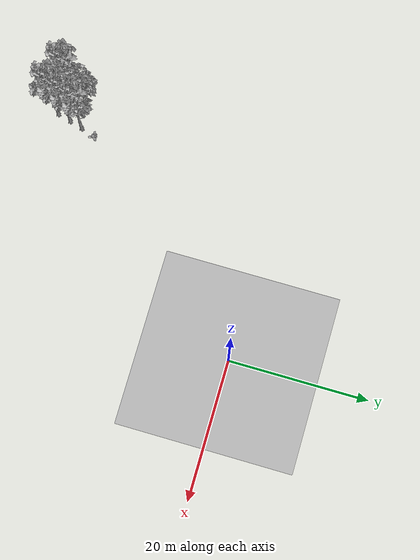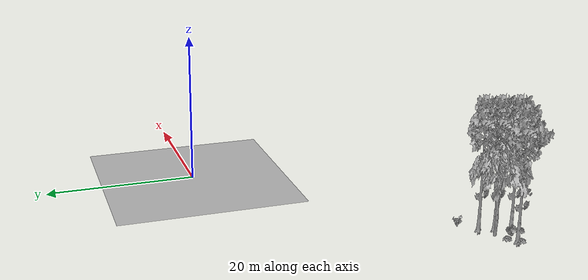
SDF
<sdf version="1.7">
 <world name="default">
  <model name="ground_plane">
   <static>1</static>
   <link name="link">
    <collision name="collision">
     <pose>-50 0 0 0 -0 0</pose>
     <geometry><plane><normal>0 0 1</normal><size>80 80</size></plane></geometry>
     <surface><contact><ode><min_depth>0.01</min_depth><max_vel>0</max_vel></ode></contact></surface>
    </collision>
    <visual name="grass">
     <cast_shadows>0</cast_shadows>
     <geometry>
      <mesh>
       <scale>0.46714285714285714 0.46714285714285714 0.1</scale>
       <uri>file://grass_plane/meshes/grass_plane.dae</uri>
      </mesh>
     </geometry>
    </visual>
   </link>
  </model>
  <model name="Tree 91">
   <static>1</static>
   <pose>-26.66068512762981 -29.62425290926226 0 1.57079 -0 0</pose>
   <link name="link">
    <collision name="collision">
     <geometry><mesh><scale>3.5 5 3.5</scale><uri>model://tree_9/meshes/tree_9.obj</uri></mesh></geometry>
    </collision>
    <visual name="visual">
     <geometry><mesh><scale>3.5 5 3.5</scale><uri>model://tree_9/meshes/tree_9.obj</uri></mesh></geometry>
    </visual>
   </link>
  </model>
  <model name="Tree 109">
   <static>1</static>
   <pose>-31.047298068622037 -32.410441318170214 0 1.57079 -0 0</pose>
   <link name="link">
    <collision name="collision">
     <geometry><mesh><scale>3.5 5 3.5</scale><uri>model://tree_9/meshes/tree_9.obj</uri></mesh></geometry>
    </collision>
    <visual name="visual">
     <geometry><mesh><scale>3.5 5 3.5</scale><uri>model://tree_9/meshes/tree_9.obj</uri></mesh></geometry>
    </visual>
   </link>
  </model>
  <model name="Tree 144">
   <static>1</static>
   <pose>-27.790655116056428 -33.473415664977075 0 1.57079 -0 0</pose>
   <link name="link">
    <collision name="collision">
     <geometry><mesh><scale>3.5 5 3.5</scale><uri>model://tree_9/meshes/tree_9.obj</uri></mesh></geometry>
    </collision>
    <visual name="visual">
     <geometry><mesh><scale>3.5 5 3.5</scale><uri>model://tree_9/meshes/tree_9.obj</uri></mesh></geometry>
    </visual>
   </link>
  </model>
  <model name="Tree 387">
   <static>1</static>
   <pose>-29.1868461236918 -30.48968736153754 0 1.57079 -0 0</pose>
   <link name="link">
    <collision name="collision">
     <geometry><mesh><scale>3.5 5 3.5</scale><uri>model://tree_2/meshes/tree_2.obj</uri></mesh></geometry>
    </collision>
    <visual name="visual">
     <geometry><mesh><scale>3.5 5 3.5</scale><uri>model://tree_2/meshes/tree_2.obj</uri></mesh></geometry>
    </visual>
   </link>
  </model>
  <model name="Tree 525">
   <static>1</static>
   <pose>-27.227601910861637 -31.504619769352466 0 1.57079 -0 0</pose>
   <link name="link">
    <collision name="collision">
     <geometry><mesh><scale>3.5 5 3.5</scale><uri>model://tree_9/meshes/tree_9.obj</uri></mesh></geometry>
    </collision>
    <visual name="visual">
     <geometry><mesh><scale>3.5 5 3.5</scale><uri>model://tree_9/meshes/tree_9.obj</uri></mesh></geometry>
    </visual>
   </link>
  </model>
  <model name="Bush 106">
   <static>1</static>
   <pose>-31.589328543905513 -32.67135421021413 0 1.57079 -0 0</pose>
   <link name="link">
    <collision name="collision">
     <geometry><mesh><scale>2 2 2</scale><uri>model://bush_2/meshes/bush_2.obj</uri></mesh></geometry>
     <surface><contact><collide_without_contact>false</collide_without_contact></contact></surface>
    </collision>
    <visual name="visual">
     <geometry><mesh><scale>2 2 2</scale><uri>model://bush_2/meshes/bush_2.obj</uri></mesh></geometry>
    </visual>
   </link>
  </model>
  <model name="Bush 351">
   <static>1</static>
   <pose>-28.84995868282509 -34.15962803197402 0 1.57079 -0 0</pose>
   <link name="link">
    <collision name="collision">
     <geometry><mesh><scale>2 2 2</scale><uri>model://bush_2/meshes/bush_2.obj</uri></mesh></geometry>
     <surface><contact><collide_without_contact>false</collide_without_contact></contact></surface>
    </collision>
    <visual name="visual">
     <geometry><mesh><scale>2 2 2</scale><uri>model://bush_2/meshes/bush_2.obj</uri></mesh></geometry>
    </visual>
   </link>
  </model>
  <model name="Bush 361">
   <static>1</static>
   <pose>-25.472790787399006 -27.306620820355345 0 1.57079 -0 0</pose>
   <link name="link">
    <collision name="collision">
     <geometry><mesh><scale>2 2 2</scale><uri>model://bush_0/meshes/bush_0.obj</uri></mesh></geometry>
     <surface><contact><collide_without_contact>false</collide_without_contact></contact></surface>
    </collision>
    <visual name="visual">
     <geometry><mesh><scale>2 2 2</scale><uri>model://bush_0/meshes/bush_0.obj</uri></mesh></geometry>
    </visual>
   </link>
  </model>
  <model name="Bush 394">
   <static>1</static>
   <pose>-29.707456001087184 -32.354472270251485 0 1.57079 -0 0</pose>
   <link name="link">
    <collision name="collision">
     <geometry><mesh><scale>2 2 2</scale><uri>model://bush_4/meshes/bush_4.obj</uri></mesh></geometry>
     <surface><contact><collide_without_contact>false</collide_without_contact></contact></surface>
    </collision>
    <visual name="visual">
     <geometry><mesh><scale>2 2 2</scale><uri>model://bush_4/meshes/bush_4.obj</uri></mesh></geometry>
    </visual>
   </link>
  </model>
  <model name="Bush 492">
   <static>1</static>
   <pose>-30.50865806653255 -31.394333366889676 0 1.57079 -0 0</pose>
   <link name="link">
    <collision name="collision">
     <geometry><mesh><scale>2 2 2</scale><uri>model://bush_2/meshes/bush_2.obj</uri></mesh></geometry>
     <surface><contact><collide_without_contact>false</collide_without_contact></contact></surface>
    </collision>
    <visual name="visual">
     <geometry><mesh><scale>2 2 2</scale><uri>model://bush_2/meshes/bush_2.obj</uri></mesh></geometry>
    </visual>
   </link>
  </model>
  <model name="Bush 529">
   <static>1</static>
   <pose>-29.075043125490204 -34.02539846745149 0 1.57079 -0 0</pose>
   <link name="link">
    <collision name="collision">
     <geometry><mesh><scale>2 2 2</scale><uri>model://bush_2/meshes/bush_2.obj</uri></mesh></geometry>
     <surface><contact><collide_without_contact>false</collide_without_contact></contact></surface>
    </collision>
    <visual name="visual">
     <geometry><mesh><scale>2 2 2</scale><uri>model://bush_2/meshes/bush_2.obj</uri></mesh></geometry>
    </visual>
   </link>
  </model>
 </world>
</sdf>
